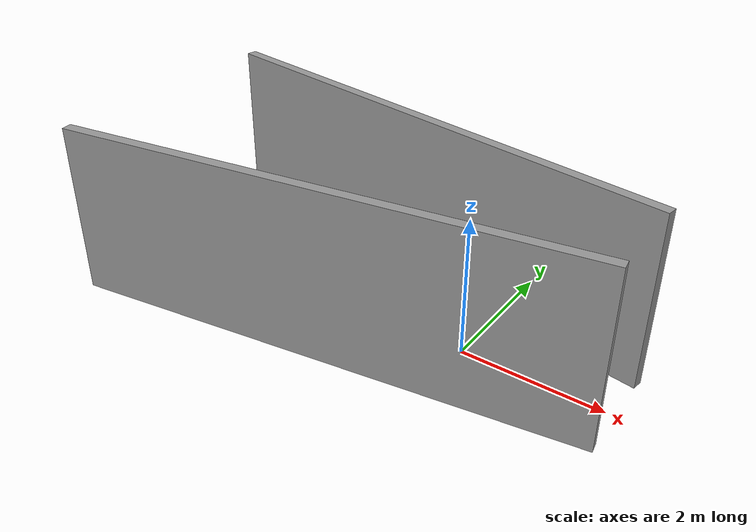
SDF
<?xml version='1.0'?>
<sdf version='1.7'>
  <model name='corrider1'>
    <pose>-1.53436 0.056582 0 0 -0 0</pose>
    <link name='Wall_7'>
      <collision name='Wall_7_Collision'>
        <geometry>
          <box>
            <size>7.40981 0.15 2.5</size>
          </box>
        </geometry>
        <pose>0 0 1.25 0 -0 0</pose>
      </collision>
      <visual name='Wall_7_Visual'>
        <pose>0 0 1.25 0 -0 0</pose>
        <geometry>
          <box>
            <size>7.40981 0.15 2.5</size>
          </box>
        </geometry>
        <material>
          <script>
            <uri>file://media/materials/scripts/gazebo.material</uri>
            <name>Gazebo/Grey</name>
          </script>
          <ambient>1 1 1 1</ambient>
        </material>
        <meta>
          <layer>0</layer>
        </meta>
      </visual>
      <pose>-0 1.22662 0 0 -0 -0.158574</pose>
    </link>
    <link name='Wall_9'>
      <collision name='Wall_9_Collision'>
        <geometry>
          <box>
            <size>7.40318 0.15 2.5</size>
          </box>
        </geometry>
        <pose>0 0 1.25 0 -0 0</pose>
      </collision>
      <visual name='Wall_9_Visual'>
        <pose>0 0 1.25 0 -0 0</pose>
        <geometry>
          <box>
            <size>7.40318 0.15 2.5</size>
          </box>
        </geometry>
        <material>
          <script>
            <uri>file://media/materials/scripts/gazebo.material</uri>
            <name>Gazebo/Grey</name>
          </script>
          <ambient>1 1 1 1</ambient>
        </material>
        <meta>
          <layer>0</layer>
        </meta>
      </visual>
      <pose>-0 -1.24838 0 0 -0 0.152747</pose>
    </link>
    <static>1</static>
  </model>
</sdf>
